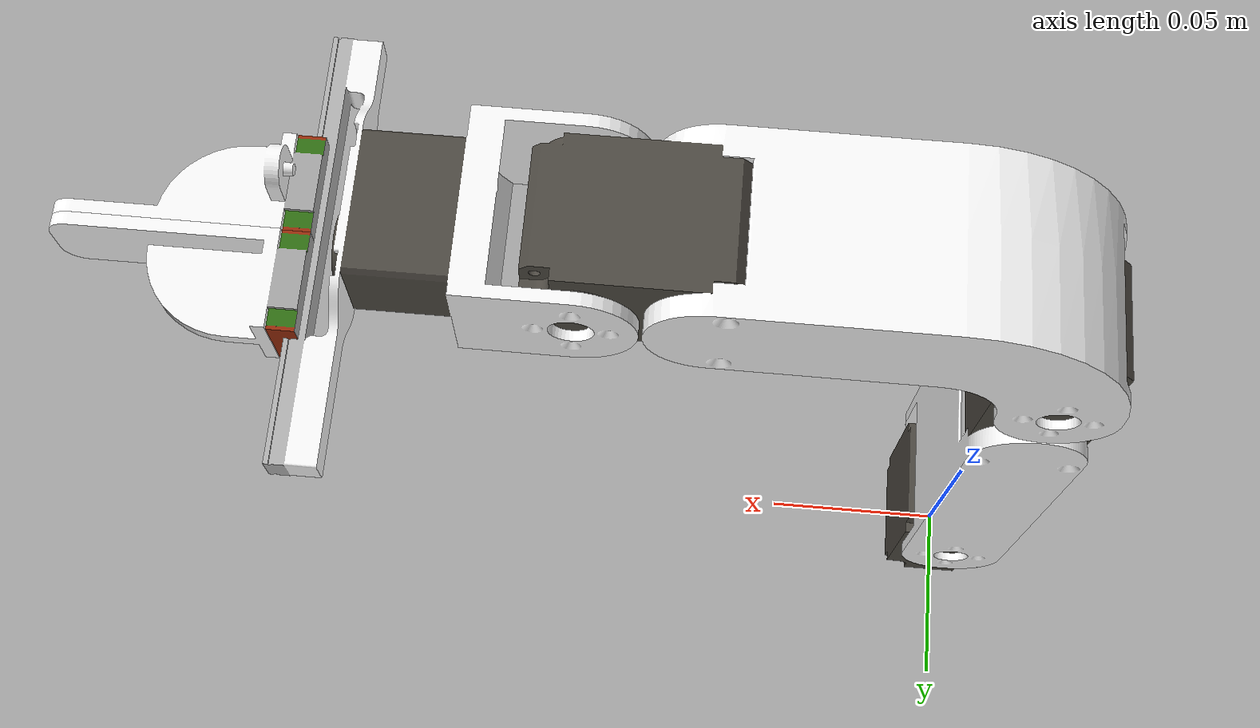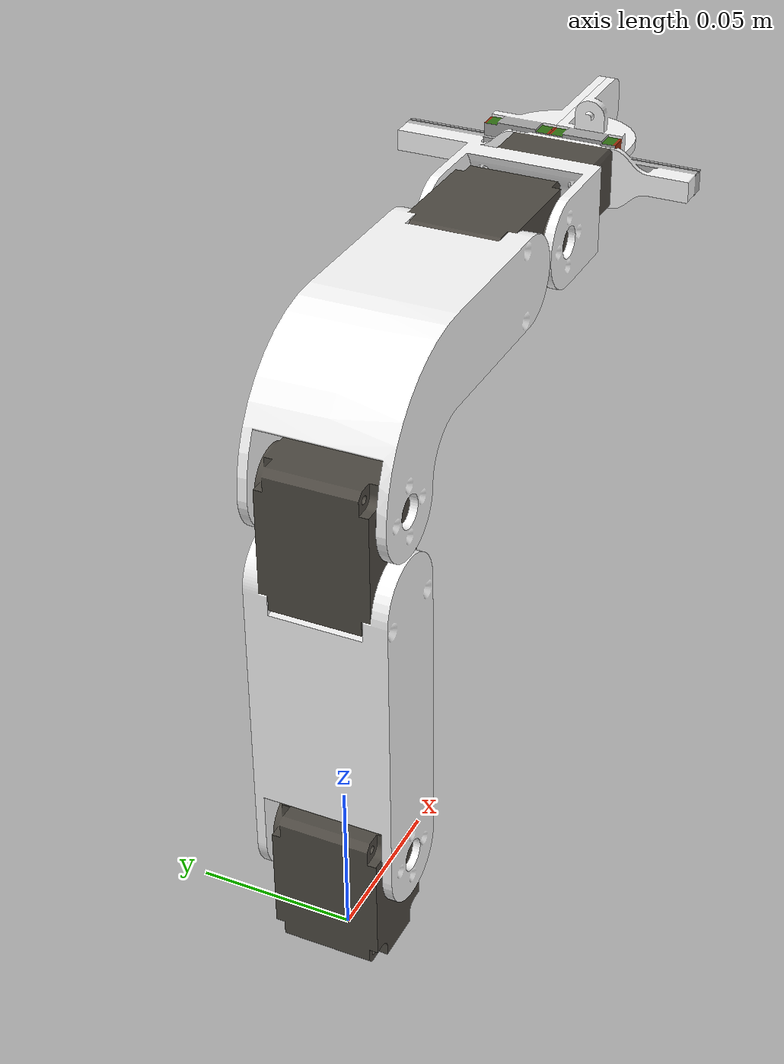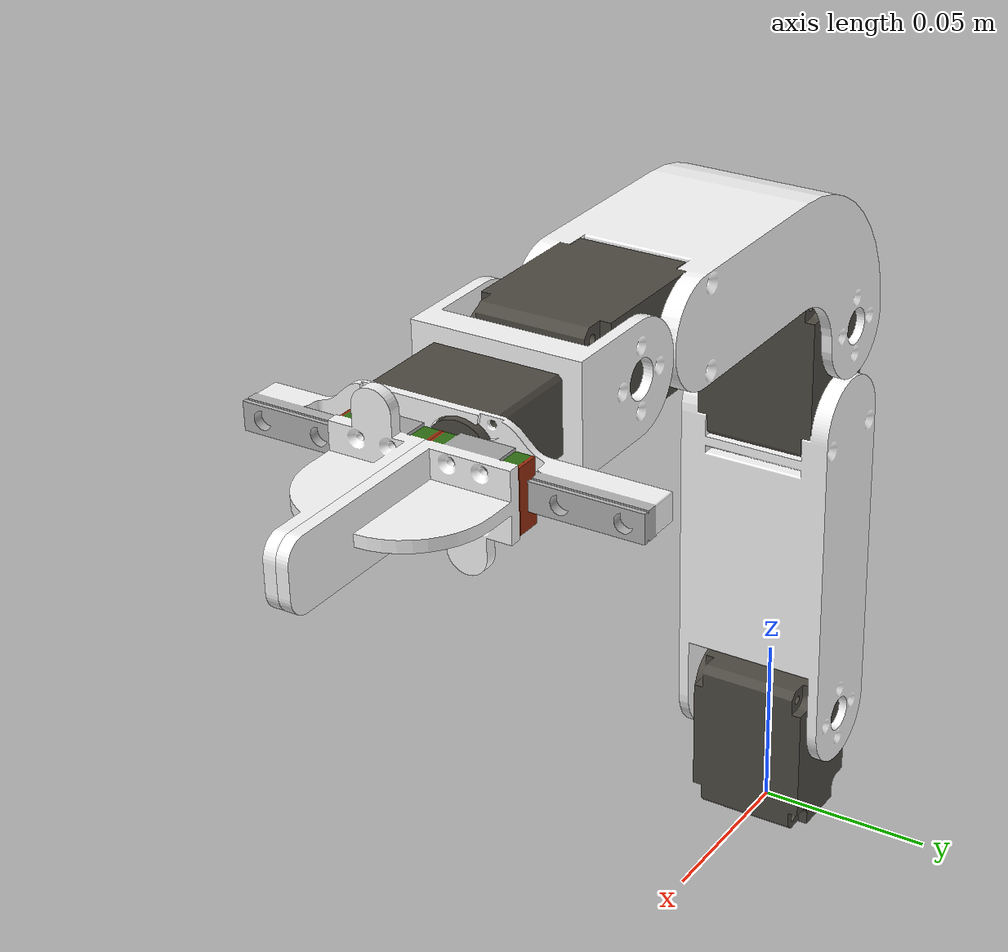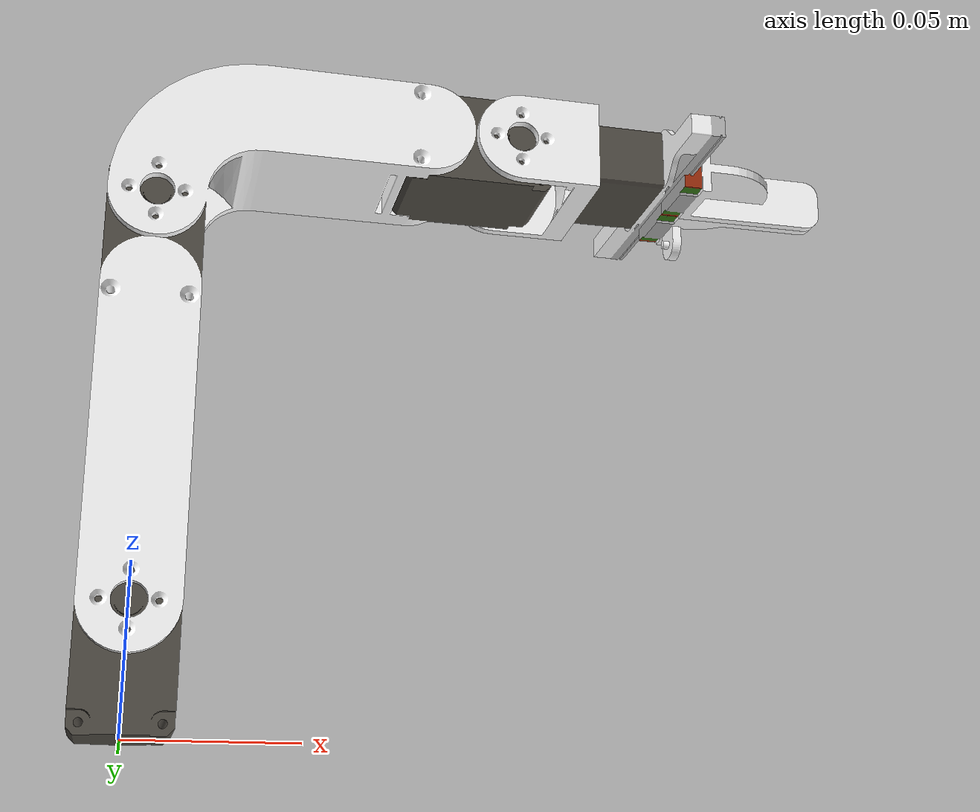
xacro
<?xml version="1.0"?>
<robot xmlns:xacro="http://www.ros.org/wiki/xacro" name="xavbot_arm">
  <xacro:arg name="prefix" default="" />

  <!-- Import Geometry -->
  <xacro:include filename="$(find xavbot_description)/urdf/xavbot.arm.xacro" />
  <xacro:xavbot_arm prefix="$(arg prefix)" mesh_dir="package://xavbot_description/meshes" standalone="true" />

  <!-- Import xavbot ros2_control description -->
  <xacro:include filename="$(find xavbot_description)/urdf/xavbot.arm.ros2_control.xacro" />
  <xacro:xavbot_arm_control name="xavbot_arm" prefix="$(arg prefix)" />

</robot>

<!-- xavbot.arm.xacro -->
<robot xmlns:xacro="http://www.ros.org/wiki/xacro" name="xavbot">

  <xacro:macro name="xavbot_arm" params="prefix='' mesh_dir='package://xavbot_description/meshes' standalone='true'">

  <!-- Constants for robot dimensions -->
  <xacro:property name="PI" value="3.1415926535897931"/>

      <!-- link0 -->
      <xacro:if value="${standalone}">
        <link name="${prefix}base_link" />
        <joint name="${prefix}link0_joint" type="fixed">
          <parent link="${prefix}base_link"/>
          <child link="${prefix}link0"/>
          <origin xyz="0 0 0" rpy="0 0 0"/>
        </joint>
      </xacro:if>

      <xacro:unless value="${standalone}">
        <joint name="${prefix}link0_joint" type="fixed">
          <parent link="${prefix}base_link"/>
          <child link="${prefix}link0"/>
          <origin xyz="0.18 0.180 0.073" rpy="0 0 0"/>
        </joint>
      </xacro:unless>

      <link name="${prefix}link0">
        <collision>
          <origin xyz="0 0 0.02325" rpy="0 0 0"/>
          <geometry>
            <box size="0.0285 0.04 0.0465"/>
          </geometry>
        </collision>

        <visual>
          <origin xyz="0 0 0" rpy="0 0 0"/>
          <geometry>
            <mesh filename="${mesh_dir}/link0.dae" scale="1 1 1"/>
          </geometry>
        </visual>

      </link>

      <!-- link1 -->
      <joint name="${prefix}link1_joint" type="revolute">
        <parent link="${prefix}link0"/>
        <child link="${prefix}link1"/>
        <origin xyz="0 0 0.03525" rpy="${PI / 2} 0 0"/>
        <axis xyz="0 0 1"/>
        <dynamics damping="0.2"/>
        <limit
          lower="${-PI/2}"
          upper="${PI/2}"
          effort="4.0"
          velocity="5.5">
        </limit>
      </joint>

      <link name="${prefix}link1">
        <collision>
          <origin xyz="0 0.0585 0" rpy="0 0 0"/>
          <geometry>
            <box size="0.0285 0.1455 0.044"/>
          </geometry>
        </collision>

        <visual>
          <origin xyz="0 0 0" rpy="0 ${PI} 0"/>
          <geometry>
            <mesh filename="${mesh_dir}/link1.dae" scale="1 1 1"/>
          </geometry>
        </visual>

      </link>

      <!-- link2 -->
      <joint name="${prefix}link2_joint" type="revolute">
        <parent link="${prefix}link1"/>
        <child link="${prefix}link2"/>
        <origin xyz="0 0.12 0" rpy="0 0 0"/>
        <axis xyz="0 0 1"/>
        <dynamics damping="0.2"/>
        <limit
          lower="${-PI/2}"
          upper="${PI/2}"
          effort="4.0"
          velocity="5.5">
        </limit>
      </joint>

      <link name="${prefix}link2">
        <collision>
          <origin xyz="0 0.015 0" rpy="0 0 0"/>
          <geometry>
            <box size="0.0285 0.0585 0.044"/>
          </geometry>
        </collision>
          <collision>
          <origin xyz="0.0535 0.03 0" rpy="0 0 0"/>
          <geometry>
            <box size="0.1355 0.0285 0.044"/>
          </geometry>
        </collision>

        <visual>
          <origin xyz="0 0 0" rpy="0 ${PI} 0"/>
          <geometry>
            <mesh filename="${mesh_dir}/link2.dae" scale="1 1 1"/>
          </geometry>
        </visual>
      </link>

      <!-- link3 -->
      <joint name="${prefix}link3_joint" type="revolute">
        <parent link="${prefix}link2"/>
        <child link="${prefix}link3"/>
        <origin xyz="0.11 0.03 0" rpy="0 0 ${-PI/2}"/>
        <axis xyz="0 0 -1 "/>
        <dynamics damping="0.2"/>
        <limit
          lower="-${PI/2}"
          upper="${PI/2}"
          effort="4.0"
          velocity="5.5">
        </limit>
      </joint>

      <link name="${prefix}link3">
        <collision>
          <origin xyz="0 0.016875 0" rpy="0 0 0"/>
          <geometry>
            <box size="0.0285 0.06225 0.044"/>
          </geometry>
        </collision>
        <collision>
          <origin xyz="0 0.0535 -0.0075" rpy="0 0 0"/>
          <geometry>
            <box size="0.01 0.011 0.1"/>
          </geometry>
        </collision>

        <visual>
          <origin xyz="0 0 0" rpy="0 0 0"/>
          <geometry>
            <mesh filename="${mesh_dir}/link3.dae" scale="1 1 1"/>
          </geometry>
        </visual>
      </link>

      <!-- gripper_virtual -->
      <link name="${prefix}gripper_virtual"/>
      <joint name="${prefix}gripper_virtual_joint" type="prismatic">
        <parent link="${prefix}link3"/>
        <child link="${prefix}gripper_virtual"/>
        <origin xyz="0 0 0" rpy="0 0 ${PI/2}"/>
        <axis xyz="1 0 0"/>
        <limit
          lower="0.0"
          upper="0.0536"
          effort="4.0"
          velocity="0.1"/>
      </joint>

      <!-- gripper_tcp -->
      <link name="${prefix}gripper_tcp"/>
      <joint name="${prefix}gripper_tcp_joint" type="fixed">
        <parent link="${prefix}link3"/>
        <child link="${prefix}gripper_tcp"/>
        <origin xyz="0 0.105 -0.0075" rpy="${-PI/2} 0 ${PI/2}"/>
      </joint>

      <!-- rightfinger -->
      <joint name="${prefix}rightfinger_joint" type="prismatic">
        <parent link="${prefix}link3"/>
        <child link="${prefix}rightfinger"/>
        <mimic joint="${prefix}gripper_virtual_joint" multiplier="0.5"/>
        <origin xyz="0 0.059 0.00375" rpy="${-PI/2} ${-PI/2} 0"/>
        <axis xyz="0 0 1 "/>
      </joint>

      <link name="${prefix}rightfinger">
        <collision>
          <origin xyz="-0.00975 0 0.02657" rpy="0 0 0"/>
          <geometry>
            <box size="0.003 0.017 0.05314"/>
          </geometry>
        </collision>

        <visual>
          <origin xyz="0 0 0" rpy="0 0 ${-PI/2}"/>
          <geometry>
            <mesh filename="${mesh_dir}/finger.dae" scale="1 1 1"/>
          </geometry>
        </visual>
      </link>

      <!-- leftfinger -->
      <joint name="${prefix}leftfinger_joint" type="prismatic">
        <parent link="${prefix}link3"/>
        <child link="${prefix}leftfinger"/>
        <mimic joint="${prefix}gripper_virtual_joint" multiplier="0.5"/>
        <origin xyz="0 0.059 -0.01875" rpy="${-PI/2} ${PI/2} 0"/>
        <axis xyz="0 0 1 "/>
      </joint>

      <link name="${prefix}leftfinger">
        <collision>
          <origin xyz="-0.00975 0 0.02657" rpy="0 0 0"/>
          <geometry>
            <box size="0.003 0.017 0.05314"/>
          </geometry>
        </collision>

        <visual>
          <origin xyz="0 0 0" rpy="0 0 ${-PI/2}"/>
          <geometry>
            <mesh filename="${mesh_dir}/finger.dae" scale="1 1 1"/>
          </geometry>
        </visual>
      </link>

  </xacro:macro>

</robot>
